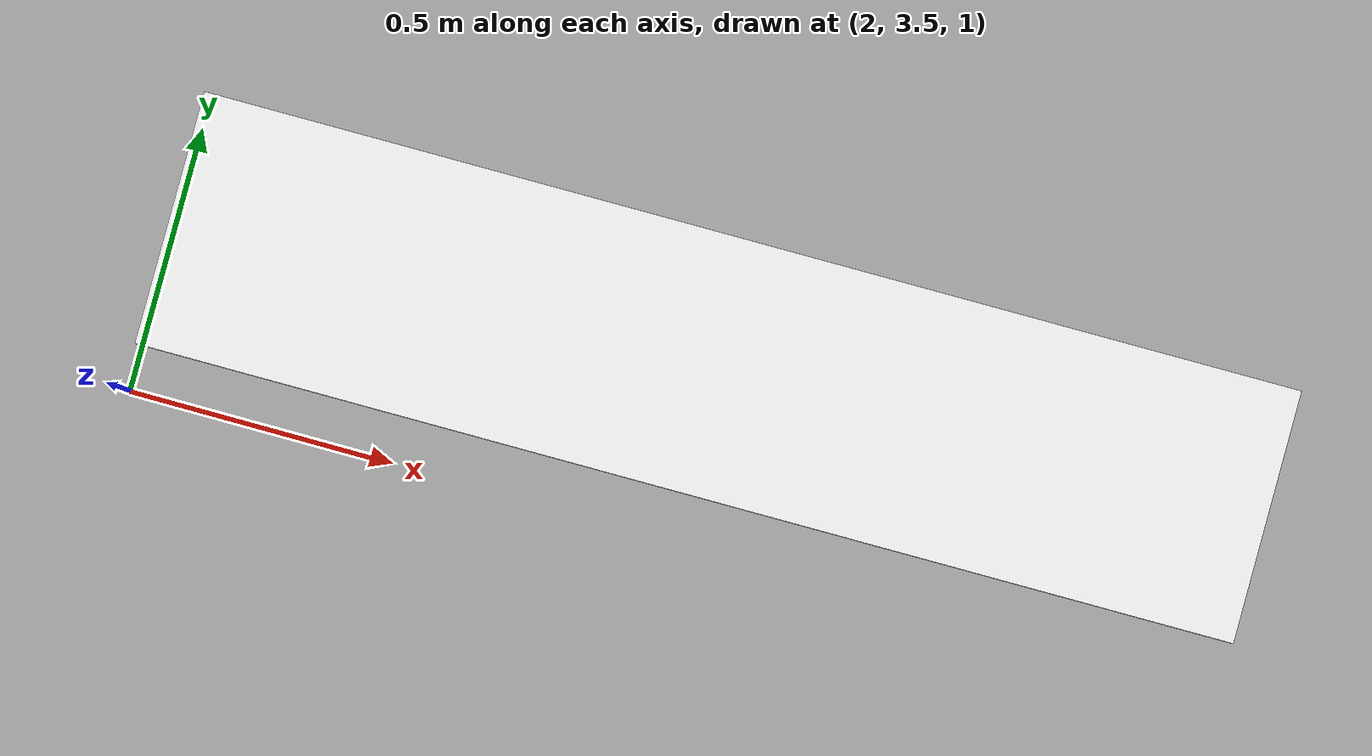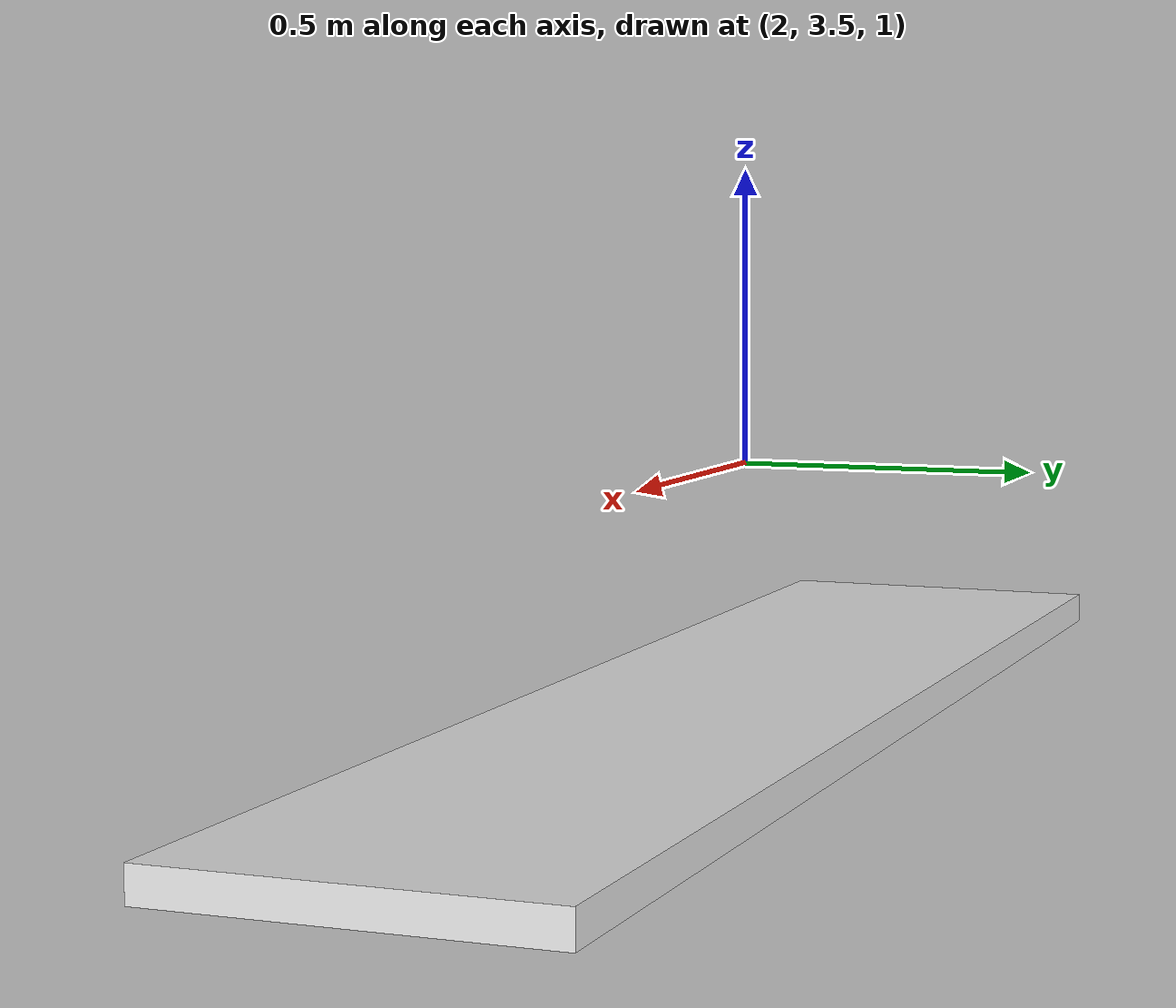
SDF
<?xml version='1.0'?>
<sdf version='1.6'>
  <model name='Shelf'>
      <link name='link_0'>
        <pose frame=''>0 -0 0 0 -0 0</pose>
        <gravity>1</gravity>
        <self_collide>0</self_collide>
        <kinematic>0</kinematic>
        <enable_wind>0</enable_wind>
        <visual name='visual'>
          <pose frame=''>0 0 0 0 -0 0</pose>
          <geometry>
            <box>
              <size>2.1209 0.487256 0.044201</size>
            </box>
          </geometry>
          <material>
            <lighting>1</lighting>
            <script>
              <uri>file://media/materials/scripts/gazebo.material</uri>
              <name>Gazebo/White</name>
            </script>
            <shader type='pixel'>
              <normal_map>__default__</normal_map>
            </shader>
            <ambient>1 1 1 1</ambient>
            <diffuse>1 1 1 1</diffuse>
            <specular>1 1 1 1</specular>
            <emissive>0 0 0 1</emissive>
          </material>
          <transparency>0</transparency>
          <cast_shadows>1</cast_shadows>
        </visual>
        <collision name='collision'>
          <laser_retro>0</laser_retro>
          <max_contacts>10</max_contacts>
          <pose frame=''>0 0 0 0 -0 0</pose>
          <geometry>
            <box>
              <size>2.1209 0.487256 0.044202</size>
            </box>
          </geometry>
        </collision>
      </link>
      <static>1</static>
      <allow_auto_disable>1</allow_auto_disable>
      <pose frame=''>3.02635 3.83455 0.774433 0 -0 0</pose>
    </model>
</sdf>
